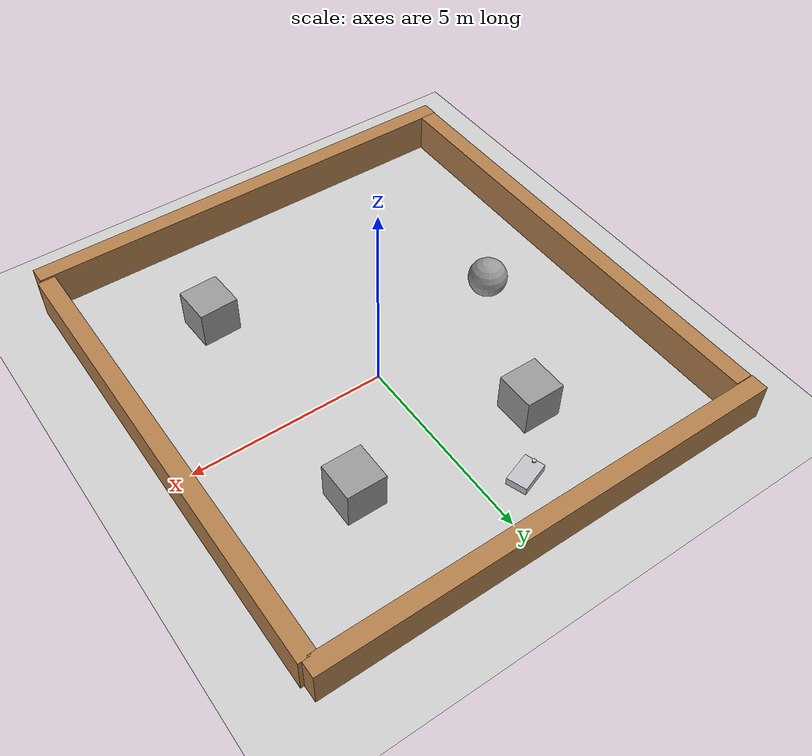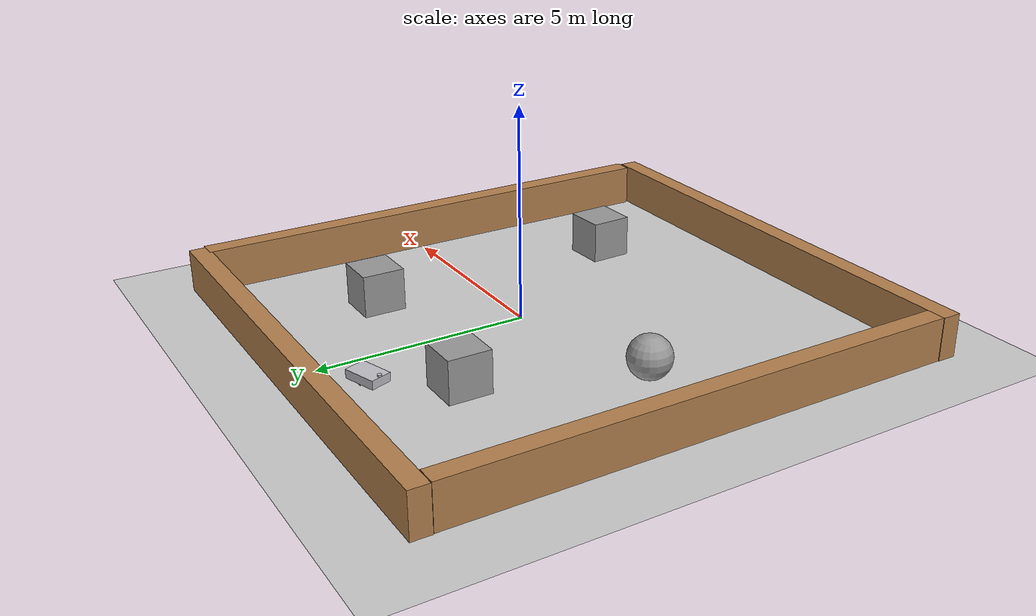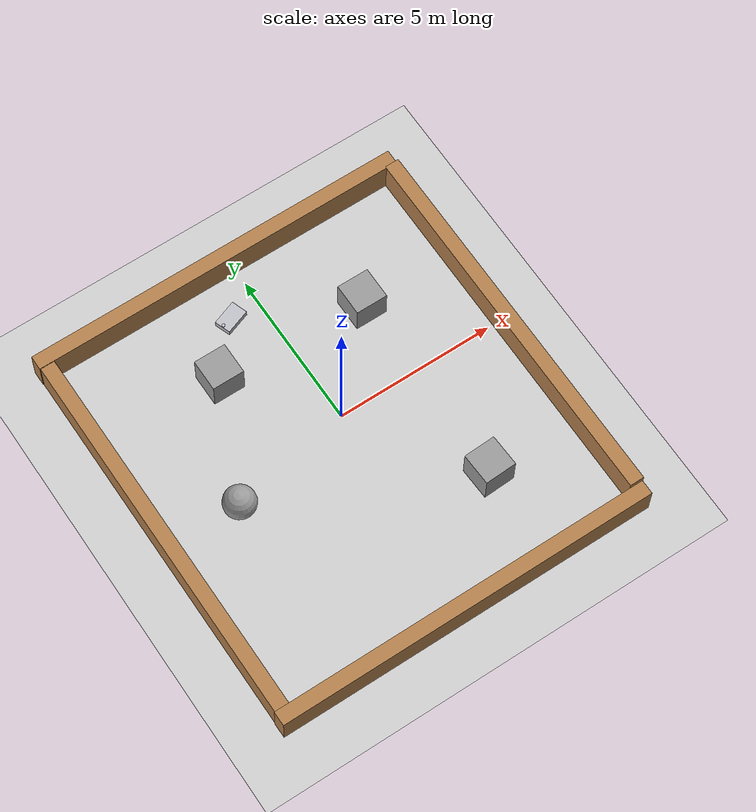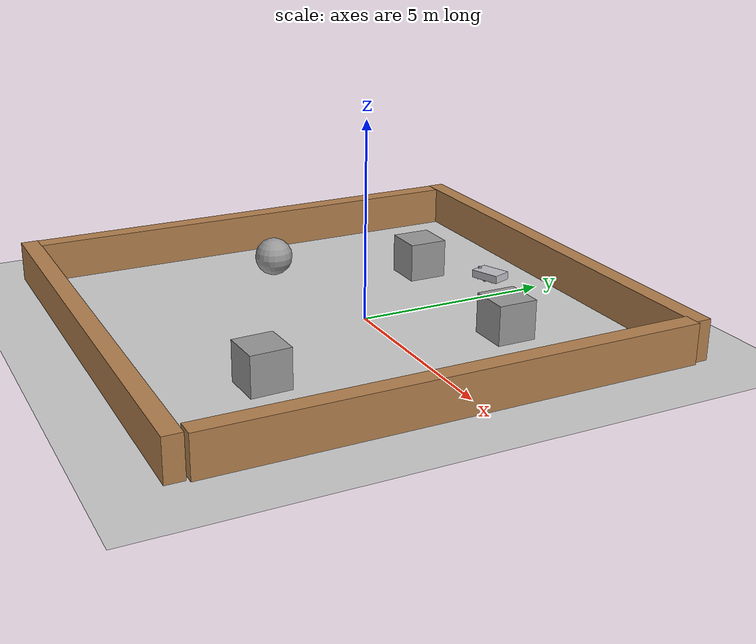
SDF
<sdf version="1.7">
 <world name="default">
  <light name="sun" type="directional">
   <pose>0 0 10 0 -0 0</pose>
   <diffuse>0.8 0.8 0.8 1</diffuse>
   <specular>0.2 0.2 0.2 1</specular>
   <attenuation>
    <range>1000</range>
    <constant>0.9</constant>
    <linear>0.01</linear>
    <quadratic>0.001</quadratic>
   </attenuation>
   <direction>-0.5 0.1 -0.9</direction>
   <spot><inner_angle>0</inner_angle><outer_angle>0</outer_angle><falloff>0</falloff></spot>
  </light>
  <model name="ground_plane">
   <static>1</static>
   <link name="link">
    <collision name="collision">
     <geometry><plane><normal>0 0 1</normal><size>100 100</size></plane></geometry>
     <surface>
      <contact><collide_bitmask>65535</collide_bitmask></contact>
      <friction><ode><mu>100</mu><mu2>50</mu2></ode></friction>
     </surface>
    </collision>
    <visual name="visual">
     <cast_shadows>0</cast_shadows>
     <geometry><plane><normal>0 0 1</normal><size>100 100</size></plane></geometry>
     <material>
      <script><uri>file://media/materials/scripts/gazebo.material</uri><name>Gazebo/Grey</name></script>
     </material>
    </visual>
   </link>
  </model>
  <gravity>0 0 -9.8</gravity>
  <magnetic_field>6e-06 2.3e-05 -4.2e-05</magnetic_field>
  <atmosphere type="adiabatic"/>
  <physics type="ode">
   <max_step_size>0.001</max_step_size>
   <real_time_factor>1</real_time_factor>
   <real_time_update_rate>1000</real_time_update_rate>
  </physics>
  <scene><ambient>0.4 0.4 0.4 1</ambient><background>0.7 0.7 0.7 1</background><shadows>1</shadows></scene>
  <spherical_coordinates>
   <surface_model>EARTH_WGS84</surface_model>
   <latitude_deg>0</latitude_deg>
   <longitude_deg>0</longitude_deg>
   <elevation>0</elevation>
   <heading_deg>0</heading_deg>
  </spherical_coordinates>
  <model name="AMR_1">
   <link name="robot_footprint">
    <inertial>
     <pose>-0.093756 0.002053 0.150576 0 -0 0</pose>
     <mass>52.3273</mass>
     <inertia>
      <ixx>2.0193</ixx>
      <ixy>0.000356214</ixy>
      <ixz>-0.0207243</ixz>
      <iyy>4.02815</iyy>
      <iyz>0.000123751</iyz>
      <izz>5.26676</izz>
     </inertia>
    </inertial>
    <collision name="robot_footprint_fixed_joint_lump__base_link_collision">
     <geometry>
      <mesh>
       <scale>0.01 0.01 0.01</scale>
       <uri>/home/keerthivasan/keerthi/catkin/src/AMR_1_description/meshes/base_link.stl</uri>
      </mesh>
     </geometry>
     <surface><friction><ode><mu>0.2</mu><mu2>0.2</mu2></ode></friction></surface>
    </collision>
    <collision name="robot_footprint_fixed_joint_lump__lidar_link_collision_1">
     <pose>0.25 0 0.27 0 -0 0</pose>
     <geometry><cylinder><length>0.04</length><radius>0.05</radius></cylinder></geometry>
     <surface><friction><ode><mu>0.2</mu><mu2>0.2</mu2></ode></friction></surface>
    </collision>
    <visual name="robot_footprint_fixed_joint_lump__base_link_visual">
     <geometry>
      <mesh>
       <scale>0.01 0.01 0.01</scale>
       <uri>/home/keerthivasan/keerthi/catkin/src/AMR_1_description/meshes/base_link.stl</uri>
      </mesh>
     </geometry>
     <material>
      <script><name>Gazebo/Silver</name><uri>file://media/materials/scripts/gazebo.material</uri></script>
     </material>
    </visual>
    <visual name="robot_footprint_fixed_joint_lump__lidar_link_visual_1">
     <pose>0.25 0 0.27 0 -0 0</pose>
     <geometry><cylinder><length>0.04</length><radius>0.05</radius></cylinder></geometry>
     <material>
      <script><name>Gazebo/Silver</name><uri>file://media/materials/scripts/gazebo.material</uri></script>
     </material>
    </visual>
    <self_collide>1</self_collide>
    <sensor name="head_hokuyo_sensor" type="ray">
     <visualize>0</visualize>
     <update_rate>40</update_rate>
     <ray>
      <scan>
       <horizontal>
        <samples>720</samples>
        <resolution>1</resolution>
        <min_angle>-1.5708</min_angle>
        <max_angle>1.5708</max_angle>
       </horizontal>
       <vertical><samples>1</samples><min_angle>0</min_angle><max_angle>0</max_angle></vertical>
      </scan>
      <range><min>0.1</min><max>10</max><resolution>0.001</resolution></range>
     </ray>
     <plugin name="gazebo_ros_head_hokuyo_controller" filename="libgazebo_ros_laser.so">
      <topicName>/scan</topicName>
      <frameName>lidar_link</frameName>
      <robotNamespace>/</robotNamespace>
     </plugin>
     <pose>0.25 0 0.27 0 -0 0</pose>
    </sensor>
   </link>
   <joint name="Revolute_3" type="revolute">
    <pose relative_to="robot_footprint">-0.097072 -0.202928 0.049293 0 -0 0</pose>
    <parent>robot_footprint</parent>
    <child>right_wheel_link</child>
    <axis>
     <xyz>0 1 0</xyz>
     <limit><lower>-1e+16</lower><upper>1e+16</upper></limit>
     <dynamics><spring_reference>0</spring_reference><spring_stiffness>0</spring_stiffness></dynamics>
    </axis>
   </joint>
   <link name="right_wheel_link">
    <pose relative_to="Revolute_3">0 0 0 0 -0 0</pose>
    <inertial>
     <pose>-0 -0.015 -0 0 -0 0</pose>
     <mass>1.84961</mass>
     <inertia>
      <ixx>0.001295</ixx>
      <ixy>0</ixy>
      <ixz>0</ixz>
      <iyy>0.002312</iyy>
      <iyz>0</iyz>
      <izz>0.001295</izz>
     </inertia>
    </inertial>
    <collision name="right_wheel_link_collision">
     <pose>0.097072 0.202928 -0.049293 0 -0 0</pose>
     <geometry>
      <mesh>
       <scale>0.01 0.01 0.01</scale>
       <uri>/home/keerthivasan/keerthi/catkin/src/AMR_1_description/meshes/Component3_1.stl</uri>
      </mesh>
     </geometry>
     <surface><friction><ode><mu>2000</mu><mu2>2000</mu2></ode></friction></surface>
    </collision>
    <visual name="right_wheel_link_visual">
     <pose>0.097072 0.202928 -0.049293 0 -0 0</pose>
     <geometry>
      <mesh>
       <scale>0.01 0.01 0.01</scale>
       <uri>/home/keerthivasan/keerthi/catkin/src/AMR_1_description/meshes/Component3_1.stl</uri>
      </mesh>
     </geometry>
     <material>
      <script><name>Gazebo/Silver</name><uri>file://media/materials/scripts/gazebo.material</uri></script>
     </material>
    </visual>
    <self_collide>1</self_collide>
   </link>
   <joint name="Revolute_4" type="revolute">
    <pose relative_to="robot_footprint">-0.097072 0.237072 0.049293 0 -0 0</pose>
    <parent>robot_footprint</parent>
    <child>left_wheel_link</child>
    <axis>
     <xyz>0 1 0</xyz>
     <limit><lower>-1e+16</lower><upper>1e+16</upper></limit>
     <dynamics><spring_reference>0</spring_reference><spring_stiffness>0</spring_stiffness></dynamics>
    </axis>
   </joint>
   <link name="left_wheel_link">
    <pose relative_to="Revolute_4">0 0 0 0 -0 0</pose>
    <inertial>
     <pose>-0 -0.015 -0 0 -0 0</pose>
     <mass>1.84961</mass>
     <inertia>
      <ixx>0.001295</ixx>
      <ixy>0</ixy>
      <ixz>0</ixz>
      <iyy>0.002312</iyy>
      <iyz>0</iyz>
      <izz>0.001295</izz>
     </inertia>
    </inertial>
    <collision name="left_wheel_link_collision">
     <pose>0.097072 -0.237072 -0.049293 0 -0 0</pose>
     <geometry>
      <mesh>
       <scale>0.01 0.01 0.01</scale>
       <uri>/home/keerthivasan/keerthi/catkin/src/AMR_1_description/meshes/Component1_1.stl</uri>
      </mesh>
     </geometry>
     <surface><friction><ode><mu>2000</mu><mu2>2000</mu2></ode></friction></surface>
    </collision>
    <visual name="left_wheel_link_visual">
     <pose>0.097072 -0.237072 -0.049293 0 -0 0</pose>
     <geometry>
      <mesh>
       <scale>0.01 0.01 0.01</scale>
       <uri>/home/keerthivasan/keerthi/catkin/src/AMR_1_description/meshes/Component1_1.stl</uri>
      </mesh>
     </geometry>
     <material>
      <script><name>Gazebo/Silver</name><uri>file://media/materials/scripts/gazebo.material</uri></script>
     </material>
    </visual>
    <self_collide>1</self_collide>
   </link>
   <static>0</static>
   <plugin name="differential_drive_controller" filename="libgazebo_ros_diff_drive.so">
    <updateRate>50</updateRate>
    <leftJoint>Revolute_4</leftJoint>
    <rightJoint>Revolute_3</rightJoint>
    <wheelSeparation>0.5380</wheelSeparation>
    <wheelDiameter>0.2410</wheelDiameter>
    <wheelAcceleration>1.0</wheelAcceleration>
    <wheelTorque>20</wheelTorque>
    <commandTopic>cmd_vel</commandTopic>
    <odometryTopic>odom</odometryTopic>
    <odometryFrame>odom</odometryFrame>
    <robotBaseFrame>robot_footprint</robotBaseFrame>
    <odometrySource>1</odometrySource>
    <publishWheelTF>1</publishWheelTF>
    <publishOdom>1</publishOdom>
    <publishWheelJointState>1</publishWheelJointState>
    <legacyMode>0</legacyMode>
    <robotNamespace>/</robotNamespace>
   </plugin>
   <pose>-1.06297 4.1961 -0.001119 -0.000115 0.018531 -2.79952</pose>
  </model>
  <model name="turtlebot3_square">
   <link name="Wall_0">
    <pose>0 1.925 0 0 -0 0</pose>
    <inertial>
     <mass>1</mass>
     <inertia><ixx>1</ixx><ixy>0</ixy><ixz>0</ixz><iyy>1</iyy><iyz>0</iyz><izz>1</izz></inertia>
    </inertial>
    <visual name="Wall_0_Visual">
     <pose>0 0 0.25 0 -0 0</pose>
     <geometry><box><size>12 0.45 1.5</size></box></geometry>
     <material>
      <script><uri>file://media/materials/scripts/gazebo.material</uri><name>Gazebo/Wood</name></script>
      <ambient>1 1 1 1</ambient>
      <shader type="pixel"><normal_map>__default__</normal_map></shader>
      <diffuse>1 1 1 1</diffuse>
      <specular>0.2 0.2 0.2 1</specular>
      <emissive>0 0 0 1</emissive>
     </material>
    </visual>
    <collision name="Wall_0_Collision">
     <pose>0 0 0.25 0 -0 0</pose>
     <geometry><box><size>12 0.45 1.5</size></box></geometry>
     <surface>
      <friction>
       <ode><mu>1</mu><mu2>1</mu2><fdir1>0 0 0</fdir1><slip1>0</slip1><slip2>0</slip2></ode>
       <torsional>
        <coefficient>1</coefficient>
        <patch_radius>0</patch_radius>
        <surface_radius>0</surface_radius>
        <use_patch_radius>1</use_patch_radius>
        <ode><slip>0</slip></ode>
       </torsional>
      </friction>
      <bounce><restitution_coefficient>0</restitution_coefficient><threshold>1e+06</threshold></bounce>
      <contact>
       <collide_without_contact>0</collide_without_contact>
       <collide_without_contact_bitmask>1</collide_without_contact_bitmask>
       <collide_bitmask>1</collide_bitmask>
       <ode>
        <soft_cfm>0</soft_cfm>
        <soft_erp>0.2</soft_erp>
        <kp>1e+13</kp>
        <kd>1</kd>
        <max_vel>0.01</max_vel>
        <min_depth>0</min_depth>
       </ode>
       <bullet>
        <split_impulse>1</split_impulse>
        <split_impulse_penetration_threshold>-0.01</split_impulse_penetration_threshold>
        <soft_cfm>0</soft_cfm>
        <soft_erp>0.2</soft_erp>
        <kp>1e+13</kp>
        <kd>1</kd>
       </bullet>
      </contact>
     </surface>
    </collision>
   </link>
   <link name="Wall_2">
    <pose>-5.75781 -4.31463 0 0 0 -1.5708</pose>
    <inertial>
     <mass>1</mass>
     <inertia><ixx>1</ixx><ixy>0</ixy><ixz>0</ixz><iyy>1</iyy><iyz>0</iyz><izz>1</izz></inertia>
    </inertial>
    <visual name="Wall_2_Visual">
     <pose>0 0 0.25 0 -0 0</pose>
     <geometry><box><size>12 0.45 1.5</size></box></geometry>
     <material>
      <script><uri>file://media/materials/scripts/gazebo.material</uri><name>Gazebo/Wood</name></script>
      <ambient>1 1 1 1</ambient>
      <shader type="pixel"><normal_map>__default__</normal_map></shader>
      <diffuse>1 1 1 1</diffuse>
      <specular>0.2 0.2 0.2 1</specular>
      <emissive>0 0 0 1</emissive>
     </material>
    </visual>
    <collision name="Wall_2_Collision">
     <pose>0 0 0.25 0 -0 0</pose>
     <geometry><box><size>12 0.45 1.5</size></box></geometry>
     <surface>
      <friction>
       <ode><mu>1</mu><mu2>1</mu2><fdir1>0 0 0</fdir1><slip1>0</slip1><slip2>0</slip2></ode>
       <torsional>
        <coefficient>1</coefficient>
        <patch_radius>0</patch_radius>
        <surface_radius>0</surface_radius>
        <use_patch_radius>1</use_patch_radius>
        <ode><slip>0</slip></ode>
       </torsional>
      </friction>
      <bounce><restitution_coefficient>0</restitution_coefficient><threshold>1e+06</threshold></bounce>
      <contact>
       <collide_without_contact>0</collide_without_contact>
       <collide_without_contact_bitmask>1</collide_without_contact_bitmask>
       <collide_bitmask>1</collide_bitmask>
       <ode>
        <soft_cfm>0</soft_cfm>
        <soft_erp>0.2</soft_erp>
        <kp>1e+13</kp>
        <kd>1</kd>
        <max_vel>0.01</max_vel>
        <min_depth>0</min_depth>
       </ode>
       <bullet>
        <split_impulse>1</split_impulse>
        <split_impulse_penetration_threshold>-0.01</split_impulse_penetration_threshold>
        <soft_cfm>0</soft_cfm>
        <soft_erp>0.2</soft_erp>
        <kp>1e+13</kp>
        <kd>1</kd>
       </bullet>
      </contact>
     </surface>
    </collision>
   </link>
   <link name="Wall_3">
    <pose>0 -10.5242 0 0 -0 0</pose>
    <inertial>
     <mass>1</mass>
     <inertia><ixx>1</ixx><ixy>0</ixy><ixz>0</ixz><iyy>1</iyy><iyz>0</iyz><izz>1</izz></inertia>
    </inertial>
    <visual name="Wall_3_Visual">
     <pose>0 0 0.25 0 -0 0</pose>
     <geometry><box><size>12 0.45 1.5</size></box></geometry>
     <material>
      <script><uri>file://media/materials/scripts/gazebo.material</uri><name>Gazebo/Wood</name></script>
      <ambient>1 1 1 1</ambient>
      <shader type="pixel"><normal_map>__default__</normal_map></shader>
      <diffuse>1 1 1 1</diffuse>
      <specular>0.2 0.2 0.2 1</specular>
      <emissive>0 0 0 1</emissive>
     </material>
    </visual>
    <collision name="Wall_3_Collision">
     <pose>0 0 0.25 0 -0 0</pose>
     <geometry><box><size>12 0.45 1.5</size></box></geometry>
     <surface>
      <friction>
       <ode><mu>1</mu><mu2>1</mu2><fdir1>0 0 0</fdir1><slip1>0</slip1><slip2>0</slip2></ode>
       <torsional>
        <coefficient>1</coefficient>
        <patch_radius>0</patch_radius>
        <surface_radius>0</surface_radius>
        <use_patch_radius>1</use_patch_radius>
        <ode><slip>0</slip></ode>
       </torsional>
      </friction>
      <bounce><restitution_coefficient>0</restitution_coefficient><threshold>1e+06</threshold></bounce>
      <contact>
       <collide_without_contact>0</collide_without_contact>
       <collide_without_contact_bitmask>1</collide_without_contact_bitmask>
       <collide_bitmask>1</collide_bitmask>
       <ode>
        <soft_cfm>0</soft_cfm>
        <soft_erp>0.2</soft_erp>
        <kp>1e+13</kp>
        <kd>1</kd>
        <max_vel>0.01</max_vel>
        <min_depth>0</min_depth>
       </ode>
       <bullet>
        <split_impulse>1</split_impulse>
        <split_impulse_penetration_threshold>-0.01</split_impulse_penetration_threshold>
        <soft_cfm>0</soft_cfm>
        <soft_erp>0.2</soft_erp>
        <kp>1e+13</kp>
        <kd>1</kd>
       </bullet>
      </contact>
     </surface>
    </collision>
   </link>
   <link name="Wall_4">
    <pose>5.86448 -4.2433 0 0 -0 1.5708</pose>
    <inertial>
     <mass>1</mass>
     <inertia><ixx>1</ixx><ixy>0</ixy><ixz>0</ixz><iyy>1</iyy><iyz>0</iyz><izz>1</izz></inertia>
    </inertial>
    <visual name="Wall_4_Visual">
     <pose>0 0 0.25 0 -0 0</pose>
     <geometry><box><size>12 0.45 1.5</size></box></geometry>
     <material>
      <script><uri>file://media/materials/scripts/gazebo.material</uri><name>Gazebo/Wood</name></script>
      <ambient>1 1 1 1</ambient>
      <shader type="pixel"><normal_map>__default__</normal_map></shader>
      <diffuse>1 1 1 1</diffuse>
      <specular>0.2 0.2 0.2 1</specular>
      <emissive>0 0 0 1</emissive>
     </material>
    </visual>
    <collision name="Wall_4_Collision">
     <pose>0 0 0.25 0 -0 0</pose>
     <geometry><box><size>12 0.45 1.5</size></box></geometry>
     <surface>
      <friction>
       <ode><mu>1</mu><mu2>1</mu2><fdir1>0 0 0</fdir1><slip1>0</slip1><slip2>0</slip2></ode>
       <torsional>
        <coefficient>1</coefficient>
        <patch_radius>0</patch_radius>
        <surface_radius>0</surface_radius>
        <use_patch_radius>1</use_patch_radius>
        <ode><slip>0</slip></ode>
       </torsional>
      </friction>
      <bounce><restitution_coefficient>0</restitution_coefficient><threshold>1e+06</threshold></bounce>
      <contact>
       <collide_without_contact>0</collide_without_contact>
       <collide_without_contact_bitmask>1</collide_without_contact_bitmask>
       <collide_bitmask>1</collide_bitmask>
       <ode>
        <soft_cfm>0</soft_cfm>
        <soft_erp>0.2</soft_erp>
        <kp>1e+13</kp>
        <kd>1</kd>
        <max_vel>0.01</max_vel>
        <min_depth>0</min_depth>
       </ode>
       <bullet>
        <split_impulse>1</split_impulse>
        <split_impulse_penetration_threshold>-0.01</split_impulse_penetration_threshold>
        <soft_cfm>0</soft_cfm>
        <soft_erp>0.2</soft_erp>
        <kp>1e+13</kp>
        <kd>1</kd>
       </bullet>
      </contact>
     </surface>
    </collision>
   </link>
   <static>1</static>
   <pose>-0.471682 3.7635 0 0 -0 0</pose>
  </model>
  <model name="unit_box">
   <pose>2.37452 2.53201 0.499995 -1e-05 -0 -0</pose>
   <link name="link">
    <inertial>
     <mass>1</mass>
     <inertia>
      <ixx>0.166667</ixx>
      <ixy>0</ixy>
      <ixz>0</ixz>
      <iyy>0.166667</iyy>
      <iyz>0</iyz>
      <izz>0.166667</izz>
     </inertia>
    </inertial>
    <collision name="collision"><geometry><box><size>1 1 1</size></box></geometry></collision>
    <visual name="visual">
     <geometry><box><size>1 1 1</size></box></geometry>
     <material>
      <script><name>Gazebo/Grey</name><uri>file://media/materials/scripts/gazebo.material</uri></script>
     </material>
    </visual>
   </link>
  </model>
  <model name="unit_sphere">
   <pose>-3.88833 -0.803118 0.5 0 -0 0</pose>
   <link name="link">
    <inertial>
     <mass>1</mass>
     <inertia><ixx>0.1</ixx><ixy>0</ixy><ixz>0</ixz><iyy>0.1</iyy><iyz>0</iyz><izz>0.1</izz></inertia>
    </inertial>
    <collision name="collision"><geometry><sphere><radius>0.5</radius></sphere></geometry></collision>
    <visual name="visual">
     <geometry><sphere><radius>0.5</radius></sphere></geometry>
     <material>
      <script><name>Gazebo/Grey</name><uri>file://media/materials/scripts/gazebo.material</uri></script>
     </material>
    </visual>
   </link>
  </model>
  <model name="unit_box_0">
   <pose>2.41236 -3.73075 0.5 0 -0 0.043497</pose>
   <link name="link">
    <inertial>
     <mass>1</mass>
     <inertia>
      <ixx>0.166667</ixx>
      <ixy>0</ixy>
      <ixz>0</ixz>
      <iyy>0.166667</iyy>
      <iyz>0</iyz>
      <izz>0.166667</izz>
     </inertia>
    </inertial>
    <collision name="collision"><geometry><box><size>1 1 1</size></box></geometry></collision>
    <visual name="visual">
     <geometry><box><size>1 1 1</size></box></geometry>
     <material>
      <script><name>Gazebo/Grey</name><uri>file://media/materials/scripts/gazebo.material</uri></script>
     </material>
    </visual>
   </link>
  </model>
  <model name="unit_box_1">
   <pose>-2.26769 2.77112 0.5 0 -0 0</pose>
   <link name="link">
    <inertial>
     <mass>1</mass>
     <inertia>
      <ixx>0.166667</ixx>
      <ixy>0</ixy>
      <ixz>0</ixz>
      <iyy>0.166667</iyy>
      <iyz>0</iyz>
      <izz>0.166667</izz>
     </inertia>
    </inertial>
    <collision name="collision"><geometry><box><size>1 1 1</size></box></geometry></collision>
    <visual name="visual">
     <geometry><box><size>1 1 1</size></box></geometry>
     <material>
      <script><name>Gazebo/Grey</name><uri>file://media/materials/scripts/gazebo.material</uri></script>
     </material>
    </visual>
   </link>
  </model>
 </world>
</sdf>
